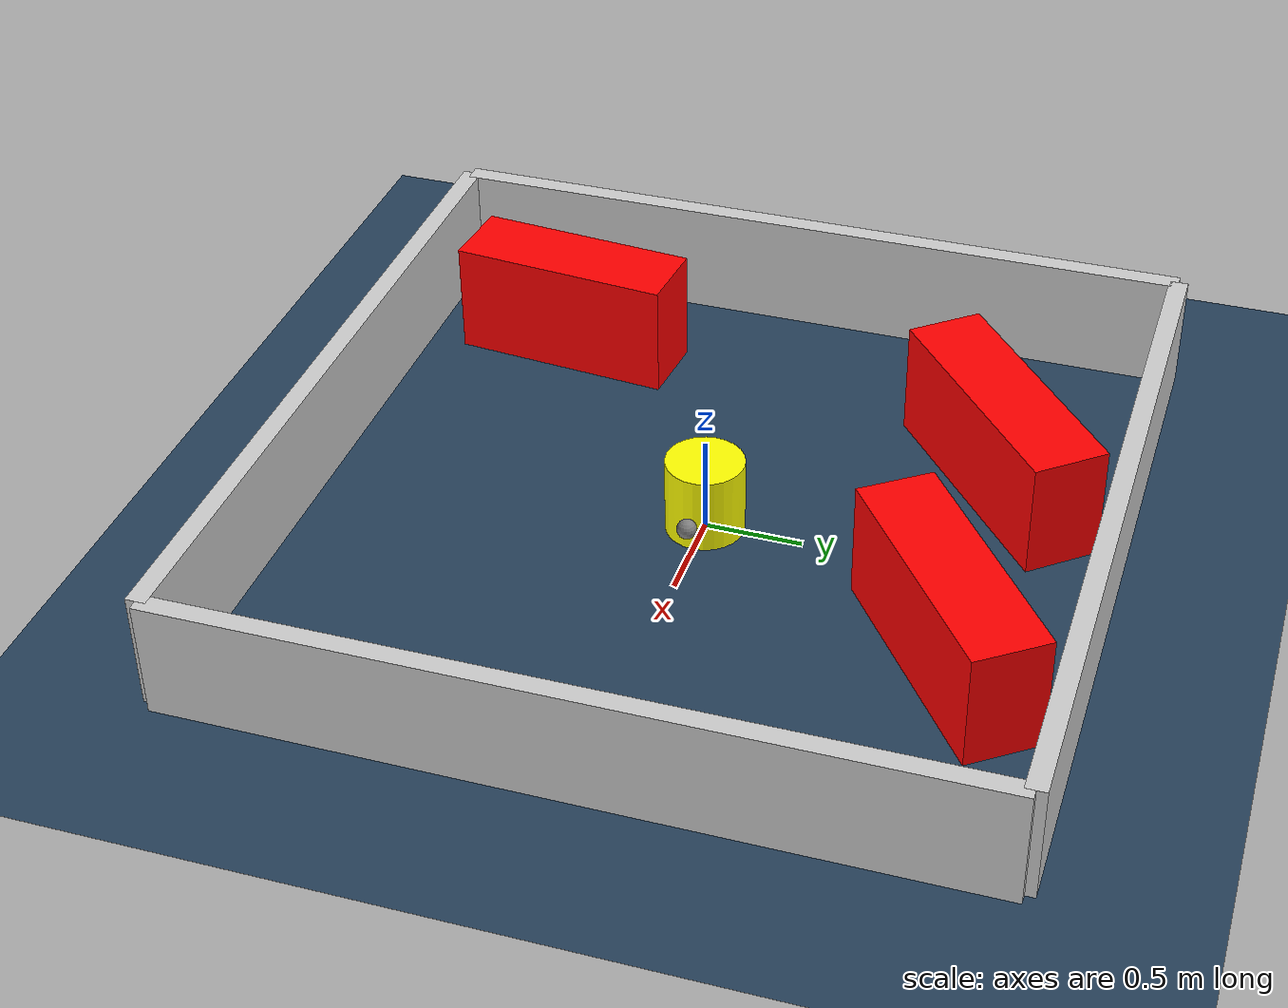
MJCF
<?xml version="1.0" ?>
<mujoco model="generated_environment">
  <option timestep="0.01" integrator="RK4" cone="elliptic"/>
  <default>
    <geom density="1"/>
  </default>
  <asset>
    <texture builtin="gradient" height="3072" rgb1="0.3 0.5 0.7" rgb2="0 0 0" type="skybox" width="512"/>
    <texture builtin="checker" height="300" mark="edge" markrgb="0.8 0.8 0.8" name="groundplane" rgb1="0.2 0.3 0.4" rgb2="0.1 0.2 0.3" type="2d" width="300"/>
    <material name="groundplane" reflectance="0.2" texrepeat="5 5" texture="groundplane" texuniform="true"/>
    <material name="robot" rgba="0.0 1.0 0.0 1"/>
  </asset>
  <worldbody>
    <light dir="0 0 -1" directional="true" pos="0 0 1.5"/>
    <geom condim="4" friction="1.0 0.005 0.001" material="groundplane" name="floor" size="0 0 0.05" type="plane"/>
    <body name="walls">
      <geom name="wall_1" condim="4" pos="-2.0 0.0 0.3" rgba="0.800000011920929 0.800000011920929 0.800000011920929 1.0" size="0.05 2.0 0.3" type="box"/>
      <geom name="wall_2" condim="4" pos="2.0 0.0 0.3" rgba="0.800000011920929 0.800000011920929 0.800000011920929 1.0" size="0.05 2.0 0.3" type="box"/>
      <geom name="wall_3" condim="4" pos="0.0 -2.0 0.3" rgba="0.800000011920929 0.800000011920929 0.800000011920929 1.0" size="2.0 0.05 0.3" type="box"/>
      <geom name="wall_4" condim="4" pos="0.0 2.0 0.3" rgba="0.800000011920929 0.800000011920929 0.800000011920929 1.0" size="2.0 0.05 0.3" type="box"/>
    </body>
    <body name="robot">
      <joint name="joint_x" type="slide" pos="0 0 0" axis="1 0 0"/>
      <joint name="joint_y" type="slide" pos="0 0 0" axis="0 1 0"/>
      <geom name="robot" type="sphere" pos="0.3 0.0 0.2" size="0.05" mass="5." friction="1.0 0.005 0.0001" condim="4" rgba="0.5 0.5 0.5 1.0"/>
      <site name="sensor_ball"/>
    </body>
    <body name="obstacle_movable_1">
      <geom name="obstacle_movable_1" condim="4" pos="0.0 0.0 0.2" euler="0 0 0.0" friction="1.0 0.005 0.001" rgba="1.0 1.0 0.0 1.0" size="0.2 0.2 0.0" type="cylinder" mass="0.1"/>
      <joint type="free"/>
    </body>
    <body name="obstacle_2_static">
      <geom name="obstacle_2_static" condim="4" pos="0.6728583035478599 1.365050851100383 0.3" euler="0 0 216.3912753446345" friction="1.0 0.005 0.001" rgba="1 0 0 1" size="0.6521028010145544 0.2 0.3" type="box"/>
    </body>
    <body name="obstacle_3_static">
      <geom name="obstacle_3_static" condim="4" pos="-1.3220050753080146 -1.155656756399525 0.3" euler="0 0 264.5739168648752" friction="1.0 0.005 0.001" rgba="1 0 0 1" size="0.5838988952812469 0.2 0.3" type="box"/>
    </body>
    <body name="obstacle_4_static">
      <geom name="obstacle_4_static" condim="4" pos="-0.7480208049658912 1.3246892576962683 0.3" euler="0 0 39.53814348117013" friction="1.0 0.005 0.001" rgba="1 0 0 1" size="0.6670703025284543 0.2 0.3" type="box"/>
    </body>
  </worldbody>
  <actuator>
    <motor name="actuator_x" joint="joint_x" gear="1" ctrlrange="-1 1"/>
    <motor name="actuator_y" joint="joint_y" gear="1" ctrlrange="-1 1"/>
  </actuator>
</mujoco>
